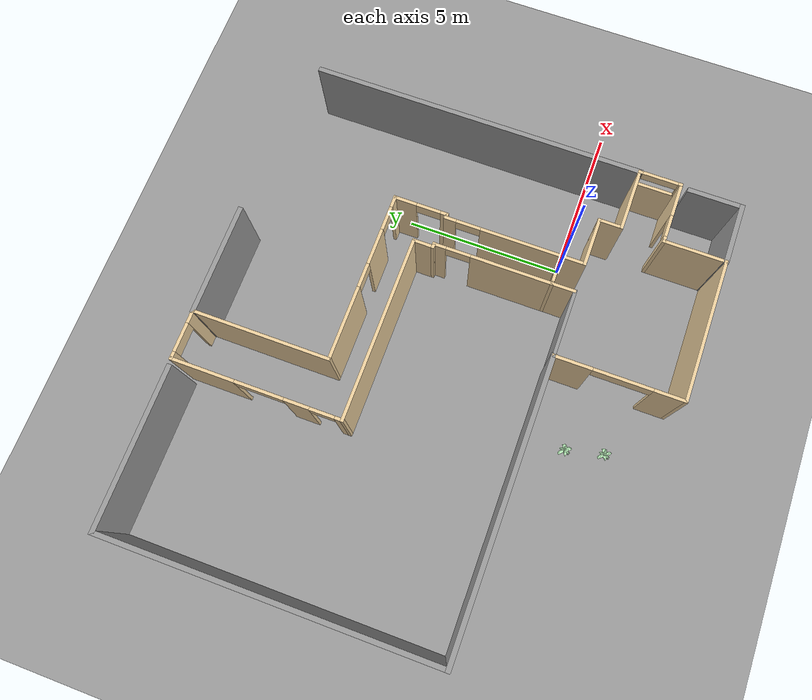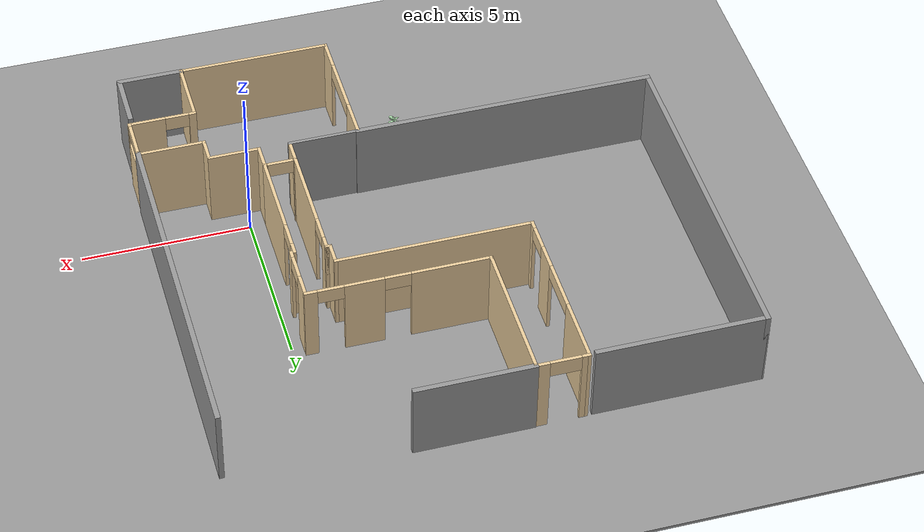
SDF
<sdf version="1.6">
 <world name="default">
  <model name="ground_plane">
   <static>1</static>
   <link name="link">
    <collision name="collision">
     <geometry><plane><normal>0 0 1</normal><size>100 100</size></plane></geometry>
     <surface><friction><ode><mu>100</mu><mu2>50</mu2></ode></friction></surface>
    </collision>
    <visual name="visual">
     <cast_shadows>0</cast_shadows>
     <geometry><plane><normal>0 0 1</normal><size>100 100</size></plane></geometry>
     <material>
      <script><uri>file://media/materials/scripts/gazebo.material</uri><name>Gazebo/Grey</name></script>
     </material>
    </visual>
   </link>
  </model>
  <model name="myroom">
   <pose>-4.68363 2.51363 0 0 -0 0</pose>
   <link name="Wall_19">
    <collision name="Wall_19_Collision">
     <geometry><box><size>0.81 0.1 2.5</size></box></geometry>
     <pose>0 0 1.25 0 -0 0</pose>
    </collision>
    <visual name="Wall_19_Visual">
     <pose>0 0 1.25 0 -0 0</pose>
     <geometry><box><size>0.81 0.1 2.5</size></box></geometry>
     <material>
      <script><uri>file://media/materials/scripts/gazebo.material</uri><name>Gazebo/Grey</name></script>
      <ambient>0.921569 0.807843 0.615686 1</ambient>
     </material>
     <meta><layer>0</layer></meta>
    </visual>
    <pose>4.2 -2.785 0 0 0 -1.5708</pose>
   </link>
   <link name="Wall_22">
    <collision name="Wall_22_Collision">
     <geometry><box><size>1.57 0.1 2.5</size></box></geometry>
     <pose>0 0 1.25 0 -0 0</pose>
    </collision>
    <visual name="Wall_22_Visual">
     <pose>0 0 1.25 0 -0 0</pose>
     <geometry><box><size>1.57 0.1 2.5</size></box></geometry>
     <material>
      <script><uri>file://media/materials/scripts/gazebo.material</uri><name>Gazebo/Grey</name></script>
      <ambient>0.921569 0.807843 0.615686 1</ambient>
     </material>
     <meta><layer>0</layer></meta>
    </visual>
    <pose>4.935 -3.14 0 0 -0 0</pose>
   </link>
   <link name="Wall_24">
    <collision name="Wall_24_Collision">
     <geometry><box><size>0.79 0.1 2.5</size></box></geometry>
     <pose>0 0 1.25 0 -0 0</pose>
    </collision>
    <visual name="Wall_24_Visual">
     <pose>0 0 1.25 0 -0 0</pose>
     <geometry><box><size>0.79 0.1 2.5</size></box></geometry>
     <material>
      <script><uri>file://media/materials/scripts/gazebo.material</uri><name>Gazebo/Grey</name></script>
      <ambient>0.921569 0.807843 0.615686 1</ambient>
     </material>
     <meta><layer>0</layer></meta>
    </visual>
    <pose>5.67 -3.485 0 0 0 -1.5708</pose>
   </link>
   <link name="Wall_26">
    <collision name="Wall_26_Collision">
     <geometry><box><size>2.03 0.1 2.5</size></box></geometry>
     <pose>0 0 1.25 0 -0 0</pose>
    </collision>
    <visual name="Wall_26_Visual">
     <pose>0 0 1.25 0 -0 0</pose>
     <geometry><box><size>2.03 0.1 2.5</size></box></geometry>
     <material>
      <script><uri>file://media/materials/scripts/gazebo.material</uri><name>Gazebo/Grey</name></script>
      <ambient>0.921569 0.807843 0.615686 1</ambient>
     </material>
     <meta><layer>0</layer></meta>
    </visual>
    <pose>6.635 -3.83 0 0 -0 0</pose>
   </link>
   <link name="Wall_28">
    <pose>7.6 -4.475 0 0 0 -1.5708</pose>
    <visual name="Wall_28_Visual_0">
     <pose>-0.621782 0 1.25 0 -0 0</pose>
     <geometry><box><size>0.146436 0.1 2.5</size></box></geometry>
     <material>
      <script><uri>file://media/materials/scripts/gazebo.material</uri><name>Gazebo/Grey</name></script>
      <ambient>0.921569 0.807843 0.615686 1</ambient>
     </material>
     <meta><layer>0</layer></meta>
    </visual>
    <collision name="Wall_28_Collision_0">
     <geometry><box><size>0.146436 0.1 2.5</size></box></geometry>
     <pose>-0.621782 0 1.25 0 -0 0</pose>
    </collision>
    <visual name="Wall_28_Visual_1">
     <pose>0.073218 0 0.9 0 -0 0</pose>
     <geometry><box><size>1.24356 0.1 1.8</size></box></geometry>
     <material>
      <script><uri>file://media/materials/scripts/gazebo.material</uri><name>Gazebo/Grey</name></script>
      <ambient>0.921569 0.807843 0.615686 1</ambient>
     </material>
     <meta><layer>0</layer></meta>
    </visual>
    <collision name="Wall_28_Collision_1">
     <geometry><box><size>1.24356 0.1 1.8</size></box></geometry>
     <pose>0.073218 0 0.9 0 -0 0</pose>
    </collision>
    <visual name="Wall_28_Visual_2">
     <pose>0.623218 0 2.15 0 -0 0</pose>
     <geometry><box><size>0.143564 0.1 0.7</size></box></geometry>
     <material>
      <script><uri>file://media/materials/scripts/gazebo.material</uri><name>Gazebo/Grey</name></script>
      <ambient>0.921569 0.807843 0.615686 1</ambient>
     </material>
     <meta><layer>0</layer></meta>
    </visual>
    <collision name="Wall_28_Collision_2">
     <geometry><box><size>0.143564 0.1 0.7</size></box></geometry>
     <pose>0.623218 0 2.15 0 -0 0</pose>
    </collision>
    <visual name="Wall_28_Visual_3">
     <pose>0.001436 0 2.35 0 -0 0</pose>
     <geometry><box><size>1.1 0.1 0.3</size></box></geometry>
     <material>
      <script><uri>file://media/materials/scripts/gazebo.material</uri><name>Gazebo/Grey</name></script>
      <ambient>0.921569 0.807843 0.615686 1</ambient>
     </material>
     <meta><layer>0</layer></meta>
    </visual>
    <collision name="Wall_28_Collision_3">
     <geometry><box><size>1.1 0.1 0.3</size></box></geometry>
     <pose>0.001436 0 2.35 0 -0 0</pose>
    </collision>
   </link>
   <link name="Wall_30">
    <pose>6.635 -5.12 0 0 -0 3.14159</pose>
    <visual name="Wall_30_Visual_0">
     <pose>-0.459913 0 1.25 0 -0 0</pose>
     <geometry><box><size>1.11017 0.1 2.5</size></box></geometry>
     <material>
      <script><uri>file://media/materials/scripts/gazebo.material</uri><name>Gazebo/Grey</name></script>
      <ambient>0.921569 0.807843 0.615686 1</ambient>
     </material>
     <meta><layer>0</layer></meta>
    </visual>
    <collision name="Wall_30_Collision_0">
     <geometry><box><size>1.11017 0.1 2.5</size></box></geometry>
     <pose>-0.459913 0 1.25 0 -0 0</pose>
    </collision>
    <visual name="Wall_30_Visual_1">
     <pose>0.905087 0 1.25 0 -0 0</pose>
     <geometry><box><size>0.219825 0.1 2.5</size></box></geometry>
     <material>
      <script><uri>file://media/materials/scripts/gazebo.material</uri><name>Gazebo/Grey</name></script>
      <ambient>0.921569 0.807843 0.615686 1</ambient>
     </material>
     <meta><layer>0</layer></meta>
    </visual>
    <collision name="Wall_30_Collision_1">
     <geometry><box><size>0.219825 0.1 2.5</size></box></geometry>
     <pose>0.905087 0 1.25 0 -0 0</pose>
    </collision>
    <visual name="Wall_30_Visual_2">
     <pose>0.445175 0 2.275 0 -0 0</pose>
     <geometry><box><size>0.7 0.1 0.45</size></box></geometry>
     <material>
      <script><uri>file://media/materials/scripts/gazebo.material</uri><name>Gazebo/Grey</name></script>
      <ambient>0.921569 0.807843 0.615686 1</ambient>
     </material>
     <meta><layer>0</layer></meta>
    </visual>
    <collision name="Wall_30_Collision_2">
     <geometry><box><size>0.7 0.1 0.45</size></box></geometry>
     <pose>0.445175 0 2.275 0 -0 0</pose>
    </collision>
   </link>
   <link name="Wall_32">
    <collision name="Wall_32_Collision">
     <geometry><box><size>1.99 0.1 2.5</size></box></geometry>
     <pose>0 0 1.25 0 -0 0</pose>
    </collision>
    <visual name="Wall_32_Visual">
     <pose>0 0 1.25 0 -0 0</pose>
     <geometry><box><size>1.99 0.1 2.5</size></box></geometry>
     <material>
      <script><uri>file://media/materials/scripts/gazebo.material</uri><name>Gazebo/Grey</name></script>
      <ambient>0.921569 0.807843 0.615686 1</ambient>
     </material>
     <meta><layer>0</layer></meta>
    </visual>
    <pose>5.67 -6.065 0 0 0 -1.5708</pose>
   </link>
   <link name="Wall_34">
    <collision name="Wall_34_Collision">
     <geometry><box><size>4.52 0.1 2.5</size></box></geometry>
     <pose>0 0 1.25 0 -0 0</pose>
    </collision>
    <visual name="Wall_34_Visual">
     <pose>0 0 1.25 0 -0 0</pose>
     <geometry><box><size>4.52 0.1 2.5</size></box></geometry>
     <material>
      <script><uri>file://media/materials/scripts/gazebo.material</uri><name>Gazebo/Grey</name></script>
      <ambient>0.921569 0.807843 0.615686 1</ambient>
     </material>
     <meta><layer>0</layer></meta>
    </visual>
    <pose>3.46 -7.01 0 0 -0 3.14159</pose>
   </link>
   <link name="Wall_36">
    <pose>1.25 -5.0735 0 0 -0 1.5708</pose>
    <visual name="Wall_36_Visual_0">
     <pose>-1.4907 0 1.25 0 -0 0</pose>
     <geometry><box><size>0.991176 0.1 2.5</size></box></geometry>
     <material>
      <script><uri>file://media/materials/scripts/gazebo.material</uri><name>Gazebo/Grey</name></script>
      <ambient>0.921569 0.807843 0.615686 1</ambient>
     </material>
     <meta><layer>0</layer></meta>
    </visual>
    <collision name="Wall_36_Collision_0">
     <geometry><box><size>0.991176 0.1 2.5</size></box></geometry>
     <pose>-1.4907 0 1.25 0 -0 0</pose>
    </collision>
    <visual name="Wall_36_Visual_1">
     <pose>0.495588 0 0.005 0 -0 0</pose>
     <geometry><box><size>2.9814 0.1 0.01</size></box></geometry>
     <material>
      <script><uri>file://media/materials/scripts/gazebo.material</uri><name>Gazebo/Grey</name></script>
      <ambient>0.921569 0.807843 0.615686 1</ambient>
     </material>
     <meta><layer>0</layer></meta>
    </visual>
    <collision name="Wall_36_Collision_1">
     <geometry><box><size>2.9814 0.1 0.01</size></box></geometry>
     <pose>0.495588 0 0.005 0 -0 0</pose>
    </collision>
    <visual name="Wall_36_Visual_2">
     <pose>1.38559 0 1.255 0 -0 0</pose>
     <geometry><box><size>1.2014 0.1 2.49</size></box></geometry>
     <material>
      <script><uri>file://media/materials/scripts/gazebo.material</uri><name>Gazebo/Grey</name></script>
      <ambient>0.921569 0.807843 0.615686 1</ambient>
     </material>
     <meta><layer>0</layer></meta>
    </visual>
    <collision name="Wall_36_Collision_2">
     <geometry><box><size>1.2014 0.1 2.49</size></box></geometry>
     <pose>1.38559 0 1.255 0 -0 0</pose>
    </collision>
    <visual name="Wall_36_Visual_3">
     <pose>-0.105111 0 2.255 0 -0 0</pose>
     <geometry><box><size>1.78 0.1 0.49</size></box></geometry>
     <material>
      <script><uri>file://media/materials/scripts/gazebo.material</uri><name>Gazebo/Grey</name></script>
      <ambient>0.921569 0.807843 0.615686 1</ambient>
     </material>
     <meta><layer>0</layer></meta>
    </visual>
    <collision name="Wall_36_Collision_3">
     <geometry><box><size>1.78 0.1 0.49</size></box></geometry>
     <pose>-0.105111 0 2.255 0 -0 0</pose>
    </collision>
   </link>
   <link name="Wall_38">
    <pose>3.745 -2.43 0 0 -0 3.14159</pose>
    <visual name="Wall_38_Visual_0">
     <pose>-0.442506 0 1.25 0 -0 0</pose>
     <geometry><box><size>0.124989 0.1 2.5</size></box></geometry>
     <material>
      <script><uri>file://media/materials/scripts/gazebo.material</uri><name>Gazebo/Grey</name></script>
      <ambient>0.921569 0.807843 0.615686 1</ambient>
     </material>
     <meta><layer>0</layer></meta>
    </visual>
    <collision name="Wall_38_Collision_0">
     <geometry><box><size>0.124989 0.1 2.5</size></box></geometry>
     <pose>-0.442506 0 1.25 0 -0 0</pose>
    </collision>
    <visual name="Wall_38_Visual_1">
     <pose>0.442494 0 1.25 0 -0 0</pose>
     <geometry><box><size>0.125011 0.1 2.5</size></box></geometry>
     <material>
      <script><uri>file://media/materials/scripts/gazebo.material</uri><name>Gazebo/Grey</name></script>
      <ambient>0.921569 0.807843 0.615686 1</ambient>
     </material>
     <meta><layer>0</layer></meta>
    </visual>
    <collision name="Wall_38_Collision_1">
     <geometry><box><size>0.125011 0.1 2.5</size></box></geometry>
     <pose>0.442494 0 1.25 0 -0 0</pose>
    </collision>
    <visual name="Wall_38_Visual_2">
     <pose>-1.1e-05 0 2.275 0 -0 0</pose>
     <geometry><box><size>0.76 0.1 0.45</size></box></geometry>
     <material>
      <script><uri>file://media/materials/scripts/gazebo.material</uri><name>Gazebo/Grey</name></script>
      <ambient>0.921569 0.807843 0.615686 1</ambient>
     </material>
     <meta><layer>0</layer></meta>
    </visual>
    <collision name="Wall_38_Collision_2">
     <geometry><box><size>0.76 0.1 0.45</size></box></geometry>
     <pose>-1.1e-05 0 2.275 0 -0 0</pose>
    </collision>
   </link>
   <link name="Wall_43">
    <collision name="Wall_43_Collision">
     <geometry><box><size>0.8 0.1 2.5</size></box></geometry>
     <pose>0 0 1.25 0 -0 0</pose>
    </collision>
    <visual name="Wall_43_Visual">
     <pose>0 0 1.25 0 -0 0</pose>
     <geometry><box><size>0.8 0.1 2.5</size></box></geometry>
     <material>
      <script><uri>file://media/materials/scripts/gazebo.material</uri><name>Gazebo/Grey</name></script>
      <ambient>0.921569 0.807843 0.615686 1</ambient>
     </material>
     <meta><layer>0</layer></meta>
    </visual>
    <pose>3.29 -2.78 0 0 0 -1.5708</pose>
   </link>
   <link name="Wall_48">
    <collision name="Wall_48_Collision">
     <geometry><box><size>2.14 0.1 2.5</size></box></geometry>
     <pose>0 0 1.25 0 -0 0</pose>
    </collision>
    <visual name="Wall_48_Visual">
     <pose>0 0 1.25 0 -0 0</pose>
     <geometry><box><size>2.14 0.1 2.5</size></box></geometry>
     <material>
      <script><uri>file://media/materials/scripts/gazebo.material</uri><name>Gazebo/Grey</name></script>
      <ambient>1 1 1 1</ambient>
     </material>
     <meta><layer>0</layer></meta>
    </visual>
    <pose>2.27 -3.13 0 0 -0 3.14159</pose>
   </link>
   <link name="Wall_50">
    <pose>3.29 -0.61 0 0 -0 1.5708</pose>
    <visual name="Wall_50_Visual_0">
     <pose>-0.593478 0 1.25 0 -0 0</pose>
     <geometry><box><size>2.55304 0.1 2.5</size></box></geometry>
     <material>
      <script><uri>file://media/materials/scripts/gazebo.material</uri><name>Gazebo/Grey</name></script>
      <ambient>0.921569 0.807843 0.615686 1</ambient>
     </material>
     <meta><layer>0</layer></meta>
    </visual>
    <collision name="Wall_50_Collision_0">
     <geometry><box><size>2.55304 0.1 2.5</size></box></geometry>
     <pose>-0.593478 0 1.25 0 -0 0</pose>
    </collision>
    <visual name="Wall_50_Visual_1">
     <pose>1.65652 0 1.25 0 -0 0</pose>
     <geometry><box><size>0.426956 0.1 2.5</size></box></geometry>
     <material>
      <script><uri>file://media/materials/scripts/gazebo.material</uri><name>Gazebo/Grey</name></script>
      <ambient>0.921569 0.807843 0.615686 1</ambient>
     </material>
     <meta><layer>0</layer></meta>
    </visual>
    <collision name="Wall_50_Collision_1">
     <geometry><box><size>0.426956 0.1 2.5</size></box></geometry>
     <pose>1.65652 0 1.25 0 -0 0</pose>
    </collision>
    <visual name="Wall_50_Visual_2">
     <pose>1.06304 0 2.275 0 -0 0</pose>
     <geometry><box><size>0.76 0.1 0.45</size></box></geometry>
     <material>
      <script><uri>file://media/materials/scripts/gazebo.material</uri><name>Gazebo/Grey</name></script>
      <ambient>0.921569 0.807843 0.615686 1</ambient>
     </material>
     <meta><layer>0</layer></meta>
    </visual>
    <collision name="Wall_50_Collision_2">
     <geometry><box><size>0.76 0.1 0.45</size></box></geometry>
     <pose>1.06304 0 2.275 0 -0 0</pose>
    </collision>
   </link>
   <link name="Wall_52">
    <collision name="Wall_52_Collision">
     <geometry><box><size>0.2 0.1 2.5</size></box></geometry>
     <pose>0 0 1.25 0 -0 0</pose>
    </collision>
    <visual name="Wall_52_Visual">
     <pose>0 0 1.25 0 -0 0</pose>
     <geometry><box><size>0.2 0.1 2.5</size></box></geometry>
     <material>
      <script><uri>file://media/materials/scripts/gazebo.material</uri><name>Gazebo/Grey</name></script>
      <ambient>0.921569 0.807843 0.615686 1</ambient>
     </material>
     <meta><layer>0</layer></meta>
    </visual>
    <pose>3.24 1.21 0 0 -0 3.14159</pose>
   </link>
   <link name="Wall_53">
    <collision name="Wall_53_Collision">
     <geometry><box><size>0.7 0.1 2.5</size></box></geometry>
     <pose>0 0 1.25 0 -0 0</pose>
    </collision>
    <visual name="Wall_53_Visual">
     <pose>0 0 1.25 0 -0 0</pose>
     <geometry><box><size>0.7 0.1 2.5</size></box></geometry>
     <material>
      <script><uri>file://media/materials/scripts/gazebo.material</uri><name>Gazebo/Grey</name></script>
      <ambient>0.921569 0.807843 0.615686 1</ambient>
     </material>
     <meta><layer>0</layer></meta>
    </visual>
    <pose>3.19 1.51 0 0 -0 1.5708</pose>
   </link>
   <link name="Wall_54">
    <collision name="Wall_54_Collision">
     <geometry><box><size>5.8 0.1 2.5</size></box></geometry>
     <pose>0 0 1.25 0 -0 0</pose>
    </collision>
    <visual name="Wall_54_Visual">
     <pose>0 0 1.25 0 -0 0</pose>
     <geometry><box><size>5.8 0.1 2.5</size></box></geometry>
     <material>
      <script><uri>file://media/materials/scripts/gazebo.material</uri><name>Gazebo/Grey</name></script>
      <ambient>0.921569 0.807843 0.615686 1</ambient>
     </material>
     <meta><layer>0</layer></meta>
    </visual>
    <pose>0.34 1.81 0 0 -0 3.14159</pose>
   </link>
   <link name="Wall_56">
    <pose>4.2 -0.63 0 0 -0 1.5708</pose>
    <visual name="Wall_56_Visual_0">
     <pose>-0.569733 0 1.25 0 -0 0</pose>
     <geometry><box><size>2.56053 0.1 2.5</size></box></geometry>
     <material>
      <script><uri>file://media/materials/scripts/gazebo.material</uri><name>Gazebo/Grey</name></script>
      <ambient>0.921569 0.807843 0.615686 1</ambient>
     </material>
     <meta><layer>0</layer></meta>
    </visual>
    <collision name="Wall_56_Collision_0">
     <geometry><box><size>2.56053 0.1 2.5</size></box></geometry>
     <pose>-0.569733 0 1.25 0 -0 0</pose>
    </collision>
    <visual name="Wall_56_Visual_1">
     <pose>1.66027 0 1.25 0 -0 0</pose>
     <geometry><box><size>0.379466 0.1 2.5</size></box></geometry>
     <material>
      <script><uri>file://media/materials/scripts/gazebo.material</uri><name>Gazebo/Grey</name></script>
      <ambient>0.921569 0.807843 0.615686 1</ambient>
     </material>
     <meta><layer>0</layer></meta>
    </visual>
    <collision name="Wall_56_Collision_1">
     <geometry><box><size>0.379466 0.1 2.5</size></box></geometry>
     <pose>1.66027 0 1.25 0 -0 0</pose>
    </collision>
    <visual name="Wall_56_Visual_2">
     <pose>1.09053 0 2.275 0 -0 0</pose>
     <geometry><box><size>0.76 0.1 0.45</size></box></geometry>
     <material>
      <script><uri>file://media/materials/scripts/gazebo.material</uri><name>Gazebo/Grey</name></script>
      <ambient>0.921569 0.807843 0.615686 1</ambient>
     </material>
     <meta><layer>0</layer></meta>
    </visual>
    <collision name="Wall_56_Collision_2">
     <geometry><box><size>0.76 0.1 0.45</size></box></geometry>
     <pose>1.09053 0 2.275 0 -0 0</pose>
    </collision>
   </link>
   <link name="Wall_57">
    <collision name="Wall_57_Collision">
     <geometry><box><size>0.2 0.1 2.5</size></box></geometry>
     <pose>0 0 1.25 0 -0 0</pose>
    </collision>
    <visual name="Wall_57_Visual">
     <pose>0 0 1.25 0 -0 0</pose>
     <geometry><box><size>0.2 0.1 2.5</size></box></geometry>
     <material>
      <script><uri>file://media/materials/scripts/gazebo.material</uri><name>Gazebo/Grey</name></script>
      <ambient>0.921569 0.807843 0.615686 1</ambient>
     </material>
     <meta><layer>0</layer></meta>
    </visual>
    <pose>4.25 1.17 0 0 -0 0</pose>
   </link>
   <link name="Wall_58">
    <pose>4.3 1.97 0 0 -0 1.5708</pose>
    <visual name="Wall_58_Visual_0">
     <pose>-0.725824 0 1.25 0 -0 0</pose>
     <geometry><box><size>0.248351 0.1 2.5</size></box></geometry>
     <material>
      <script><uri>file://media/materials/scripts/gazebo.material</uri><name>Gazebo/Grey</name></script>
      <ambient>0.921569 0.807843 0.615686 1</ambient>
     </material>
     <meta><layer>0</layer></meta>
    </visual>
    <collision name="Wall_58_Collision_0">
     <geometry><box><size>0.248351 0.1 2.5</size></box></geometry>
     <pose>-0.725824 0 1.25 0 -0 0</pose>
    </collision>
    <visual name="Wall_58_Visual_1">
     <pose>0.504176 0 1.25 0 -0 0</pose>
     <geometry><box><size>0.691649 0.1 2.5</size></box></geometry>
     <material>
      <script><uri>file://media/materials/scripts/gazebo.material</uri><name>Gazebo/Grey</name></script>
      <ambient>0.921569 0.807843 0.615686 1</ambient>
     </material>
     <meta><layer>0</layer></meta>
    </visual>
    <collision name="Wall_58_Collision_1">
     <geometry><box><size>0.691649 0.1 2.5</size></box></geometry>
     <pose>0.504176 0 1.25 0 -0 0</pose>
    </collision>
    <visual name="Wall_58_Visual_2">
     <pose>-0.221649 0 2.275 0 -0 0</pose>
     <geometry><box><size>0.76 0.1 0.45</size></box></geometry>
     <material>
      <script><uri>file://media/materials/scripts/gazebo.material</uri><name>Gazebo/Grey</name></script>
      <ambient>0.921569 0.807843 0.615686 1</ambient>
     </material>
     <meta><layer>0</layer></meta>
    </visual>
    <collision name="Wall_58_Collision_2">
     <geometry><box><size>0.76 0.1 0.45</size></box></geometry>
     <pose>-0.221649 0 2.275 0 -0 0</pose>
    </collision>
   </link>
   <link name="Wall_62">
    <pose>-2.51 4.41 0 0 -0 1.5708</pose>
    <visual name="Wall_62_Visual_0">
     <pose>-2.51076 0 1.25 0 -0 0</pose>
     <geometry><box><size>0.278473 0.1 2.5</size></box></geometry>
     <material>
      <script><uri>file://media/materials/scripts/gazebo.material</uri><name>Gazebo/Grey</name></script>
      <ambient>0.921569 0.807843 0.615686 1</ambient>
     </material>
     <meta><layer>0</layer></meta>
    </visual>
    <collision name="Wall_62_Collision_0">
     <geometry><box><size>0.278473 0.1 2.5</size></box></geometry>
     <pose>-2.51076 0 1.25 0 -0 0</pose>
    </collision>
    <visual name="Wall_62_Visual_1">
     <pose>-1.2242 0 1.25 0 -0 0</pose>
     <geometry><box><size>0.774661 0.1 2.5</size></box></geometry>
     <material>
      <script><uri>file://media/materials/scripts/gazebo.material</uri><name>Gazebo/Grey</name></script>
      <ambient>0.921569 0.807843 0.615686 1</ambient>
     </material>
     <meta><layer>0</layer></meta>
    </visual>
    <collision name="Wall_62_Collision_1">
     <geometry><box><size>0.774661 0.1 2.5</size></box></geometry>
     <pose>-1.2242 0 1.25 0 -0 0</pose>
    </collision>
    <visual name="Wall_62_Visual_2">
     <pose>1.65657 0 1.25 0 -0 0</pose>
     <geometry><box><size>1.98687 0.1 2.5</size></box></geometry>
     <material>
      <script><uri>file://media/materials/scripts/gazebo.material</uri><name>Gazebo/Grey</name></script>
      <ambient>0.921569 0.807843 0.615686 1</ambient>
     </material>
     <meta><layer>0</layer></meta>
    </visual>
    <collision name="Wall_62_Collision_2">
     <geometry><box><size>1.98687 0.1 2.5</size></box></geometry>
     <pose>1.65657 0 1.25 0 -0 0</pose>
    </collision>
    <visual name="Wall_62_Visual_3">
     <pose>-1.99153 0 2.275 0 -0 0</pose>
     <geometry><box><size>0.76 0.1 0.45</size></box></geometry>
     <material>
      <script><uri>file://media/materials/scripts/gazebo.material</uri><name>Gazebo/Grey</name></script>
      <ambient>0.921569 0.807843 0.615686 1</ambient>
     </material>
     <meta><layer>0</layer></meta>
    </visual>
    <collision name="Wall_62_Collision_3">
     <geometry><box><size>0.76 0.1 0.45</size></box></geometry>
     <pose>-1.99153 0 2.275 0 -0 0</pose>
    </collision>
    <visual name="Wall_62_Visual_4">
     <pose>-0.086866 0 2.275 0 -0 0</pose>
     <geometry><box><size>1.5 0.1 0.45</size></box></geometry>
     <material>
      <script><uri>file://media/materials/scripts/gazebo.material</uri><name>Gazebo/Grey</name></script>
      <ambient>0.921569 0.807843 0.615686 1</ambient>
     </material>
     <meta><layer>0</layer></meta>
    </visual>
    <collision name="Wall_62_Collision_4">
     <geometry><box><size>1.5 0.1 0.45</size></box></geometry>
     <pose>-0.086866 0 2.275 0 -0 0</pose>
    </collision>
   </link>
   <link name="Wall_64">
    <pose>-1.76 7.01 0 0 -0 0</pose>
    <visual name="Wall_64_Visual_0">
     <pose>-0.668872 0 1.25 0 -0 0</pose>
     <geometry><box><size>0.262256 0.1 2.5</size></box></geometry>
     <material>
      <script><uri>file://media/materials/scripts/gazebo.material</uri><name>Gazebo/Grey</name></script>
      <ambient>0.921569 0.807843 0.615686 1</ambient>
     </material>
     <meta><layer>0</layer></meta>
    </visual>
    <collision name="Wall_64_Collision_0">
     <geometry><box><size>0.262256 0.1 2.5</size></box></geometry>
     <pose>-0.668872 0 1.25 0 -0 0</pose>
    </collision>
    <visual name="Wall_64_Visual_1">
     <pose>0.581128 0 1.25 0 -0 0</pose>
     <geometry><box><size>0.437744 0.1 2.5</size></box></geometry>
     <material>
      <script><uri>file://media/materials/scripts/gazebo.material</uri><name>Gazebo/Grey</name></script>
      <ambient>0.921569 0.807843 0.615686 1</ambient>
     </material>
     <meta><layer>0</layer></meta>
    </visual>
    <collision name="Wall_64_Collision_1">
     <geometry><box><size>0.437744 0.1 2.5</size></box></geometry>
     <pose>0.581128 0 1.25 0 -0 0</pose>
    </collision>
    <visual name="Wall_64_Visual_2">
     <pose>-0.087744 0 2.25 0 -0 0</pose>
     <geometry><box><size>0.9 0.1 0.5</size></box></geometry>
     <material>
      <script><uri>file://media/materials/scripts/gazebo.material</uri><name>Gazebo/Grey</name></script>
      <ambient>0.921569 0.807843 0.615686 1</ambient>
     </material>
     <meta><layer>0</layer></meta>
    </visual>
    <collision name="Wall_64_Collision_2">
     <geometry><box><size>0.9 0.1 0.5</size></box></geometry>
     <pose>-0.087744 0 2.25 0 -0 0</pose>
    </collision>
   </link>
   <link name="Wall_66">
    <collision name="Wall_66_Collision">
     <geometry><box><size>4.30002 0.1 2.5</size></box></geometry>
     <pose>0 0 1.25 0 -0 0</pose>
    </collision>
    <visual name="Wall_66_Visual">
     <pose>0 0 1.25 0 -0 0</pose>
     <geometry><box><size>4.30002 0.1 2.5</size></box></geometry>
     <material>
      <script><uri>file://media/materials/scripts/gazebo.material</uri><name>Gazebo/Grey</name></script>
      <ambient>0.921569 0.807843 0.615686 1</ambient>
     </material>
     <meta><layer>0</layer></meta>
    </visual>
    <pose>-1.01 4.91 0 0 0 -1.5708</pose>
   </link>
   <link name="Wall_68">
    <pose>1.645 2.81 0 0 -0 0</pose>
    <visual name="Wall_68_Visual_0">
     <pose>-1.53066 0 1.25 0 -0 0</pose>
     <geometry><box><size>2.34868 0.1 2.5</size></box></geometry>
     <material>
      <script><uri>file://media/materials/scripts/gazebo.material</uri><name>Gazebo/Grey</name></script>
      <ambient>0.921569 0.807843 0.615686 1</ambient>
     </material>
     <meta><layer>0</layer></meta>
    </visual>
    <collision name="Wall_68_Collision_0">
     <geometry><box><size>2.34868 0.1 2.5</size></box></geometry>
     <pose>-1.53066 0 1.25 0 -0 0</pose>
    </collision>
    <visual name="Wall_68_Visual_1">
     <pose>0.980366 0 1.25 0 -0 0</pose>
     <geometry><box><size>1.15337 0.1 2.5</size></box></geometry>
     <material>
      <script><uri>file://media/materials/scripts/gazebo.material</uri><name>Gazebo/Grey</name></script>
      <ambient>0.921569 0.807843 0.615686 1</ambient>
     </material>
     <meta><layer>0</layer></meta>
    </visual>
    <collision name="Wall_68_Collision_1">
     <geometry><box><size>1.15337 0.1 2.5</size></box></geometry>
     <pose>0.980366 0 1.25 0 -0 0</pose>
    </collision>
    <visual name="Wall_68_Visual_2">
     <pose>2.51103 0 1.25 0 -0 0</pose>
     <geometry><box><size>0.387948 0.1 2.5</size></box></geometry>
     <material>
      <script><uri>file://media/materials/scripts/gazebo.material</uri><name>Gazebo/Grey</name></script>
      <ambient>0.921569 0.807843 0.615686 1</ambient>
     </material>
     <meta><layer>0</layer></meta>
    </visual>
    <collision name="Wall_68_Collision_2">
     <geometry><box><size>0.387948 0.1 2.5</size></box></geometry>
     <pose>2.51103 0 1.25 0 -0 0</pose>
    </collision>
    <visual name="Wall_68_Visual_3">
     <pose>0.02368 0 2.275 0 -0 0</pose>
     <geometry><box><size>0.76 0.1 0.45</size></box></geometry>
     <material>
      <script><uri>file://media/materials/scripts/gazebo.material</uri><name>Gazebo/Grey</name></script>
      <ambient>0.921569 0.807843 0.615686 1</ambient>
     </material>
     <meta><layer>0</layer></meta>
    </visual>
    <collision name="Wall_68_Collision_3">
     <geometry><box><size>0.76 0.1 0.45</size></box></geometry>
     <pose>0.02368 0 2.275 0 -0 0</pose>
    </collision>
    <visual name="Wall_68_Visual_4">
     <pose>1.93705 0 2.275 0 -0 0</pose>
     <geometry><box><size>0.76 0.1 0.45</size></box></geometry>
     <material>
      <script><uri>file://media/materials/scripts/gazebo.material</uri><name>Gazebo/Grey</name></script>
      <ambient>0.921569 0.807843 0.615686 1</ambient>
     </material>
     <meta><layer>0</layer></meta>
    </visual>
    <collision name="Wall_68_Collision_4">
     <geometry><box><size>0.76 0.1 0.45</size></box></geometry>
     <pose>1.93705 0 2.275 0 -0 0</pose>
    </collision>
   </link>
   <link name="Wall_70">
    <collision name="Wall_70_Collision">
     <geometry><box><size>9 0.15 2.5</size></box></geometry>
     <pose>0 0 1.25 0 -0 0</pose>
    </collision>
    <visual name="Wall_70_Visual">
     <pose>0 0 1.25 0 -0 0</pose>
     <geometry><box><size>9 0.15 2.5</size></box></geometry>
     <material>
      <script><uri>file://media/materials/scripts/gazebo.material</uri><name>Gazebo/Grey</name></script>
      <ambient>1 1 1 1</ambient>
     </material>
     <meta><layer>0</layer></meta>
    </visual>
    <pose>-3.175 -3.13 0 0 -0 3.14159</pose>
   </link>
   <link name="Wall_71">
    <collision name="Wall_71_Collision">
     <geometry><box><size>10.25 0.15 2.5</size></box></geometry>
     <pose>0 0 1.25 0 -0 0</pose>
    </collision>
    <visual name="Wall_71_Visual">
     <pose>0 0 1.25 0 -0 0</pose>
     <geometry><box><size>10.25 0.15 2.5</size></box></geometry>
     <material>
      <script><uri>file://media/materials/scripts/gazebo.material</uri><name>Gazebo/Grey</name></script>
      <ambient>1 1 1 1</ambient>
     </material>
     <meta><layer>0</layer></meta>
    </visual>
    <pose>-7.6 1.92 0 0 -0 1.5708</pose>
   </link>
   <link name="Wall_72">
    <collision name="Wall_72_Collision">
     <geometry><box><size>5 0.15 2.5</size></box></geometry>
     <pose>0 0 1.25 0 -0 0</pose>
    </collision>
    <visual name="Wall_72_Visual">
     <pose>0 0 1.25 0 -0 0</pose>
     <geometry><box><size>5 0.15 2.5</size></box></geometry>
     <material>
      <script><uri>file://media/materials/scripts/gazebo.material</uri><name>Gazebo/Grey</name></script>
      <ambient>1 1 1 1</ambient>
     </material>
     <meta><layer>0</layer></meta>
    </visual>
    <pose>-5.175 6.97 0 0 -0 0</pose>
   </link>
   <link name="Wall_78">
    <collision name="Wall_78_Collision">
     <geometry><box><size>2 0.15 2.5</size></box></geometry>
     <pose>0 0 1.25 0 -0 0</pose>
    </collision>
    <visual name="Wall_78_Visual">
     <pose>0 0 1.25 0 -0 0</pose>
     <geometry><box><size>2 0.15 2.5</size></box></geometry>
     <material>
      <script><uri>file://media/materials/scripts/gazebo.material</uri><name>Gazebo/Grey</name></script>
      <ambient>1 1 1 1</ambient>
     </material>
     <meta><layer>0</layer></meta>
    </visual>
    <pose>6.595 -7.01 0 0 -0 0</pose>
   </link>
   <link name="Wall_79">
    <collision name="Wall_79_Collision">
     <geometry><box><size>1.75 0.15 2.5</size></box></geometry>
     <pose>0 0 1.25 0 -0 0</pose>
    </collision>
    <visual name="Wall_79_Visual">
     <pose>0 0 1.25 0 -0 0</pose>
     <geometry><box><size>1.75 0.15 2.5</size></box></geometry>
     <material>
      <script><uri>file://media/materials/scripts/gazebo.material</uri><name>Gazebo/Grey</name></script>
      <ambient>1 1 1 1</ambient>
     </material>
     <meta><layer>0</layer></meta>
    </visual>
    <pose>7.52 -6.21 0 0 -0 1.5708</pose>
   </link>
   <link name="Wall_81">
    <collision name="Wall_81_Collision">
     <geometry><box><size>10.5 0.15 2.5</size></box></geometry>
     <pose>0 0 1.25 0 -0 0</pose>
    </collision>
    <visual name="Wall_81_Visual">
     <pose>0 0 1.25 0 -0 0</pose>
     <geometry><box><size>10.5 0.15 2.5</size></box></geometry>
     <material>
      <script><uri>file://media/materials/scripts/gazebo.material</uri><name>Gazebo/Grey</name></script>
      <ambient>1 1 1 1</ambient>
     </material>
     <meta><layer>0</layer></meta>
    </visual>
    <pose>7.6 1.345 0 0 -0 1.5708</pose>
   </link>
   <link name="Wall_83">
    <collision name="Wall_83_Collision">
     <geometry><box><size>3.5 0.15 2.5</size></box></geometry>
     <pose>0 0 1.25 0 -0 0</pose>
    </collision>
    <visual name="Wall_83_Visual">
     <pose>0 0 1.25 0 -0 0</pose>
     <geometry><box><size>3.5 0.15 2.5</size></box></geometry>
     <material>
      <script><uri>file://media/materials/scripts/gazebo.material</uri><name>Gazebo/Grey</name></script>
      <ambient>1 1 1 1</ambient>
     </material>
     <meta><layer>0</layer></meta>
    </visual>
    <pose>0.6765 7.01 0 0 -0 0</pose>
   </link>
   <static>1</static>
  </model>
  <model name="plant2">
   <link name="link_0">
    <pose>0 3e-06 -0 1.52846 -0 0</pose>
    <inertial>
     <mass>1</mass>
     <inertia>
      <ixx>0.166667</ixx>
      <ixy>0</ixy>
      <ixz>0</ixz>
      <iyy>0.166667</iyy>
      <iyz>0</iyz>
      <izz>0.166667</izz>
     </inertia>
    </inertial>
    <visual name="visual">
     <geometry><mesh><uri>/home/robond/project1/model/3d-model.dae</uri><scale>1 1 1</scale></mesh></geometry>
     <material>
      <lighting>1</lighting>
      <script><uri>file://media/materials/scripts/gazebo.material</uri><name>Gazebo/Grey</name></script>
      <ambient>0.3 0.9 0.3 1</ambient>
      <diffuse>0.7 0.9 0.7 1</diffuse>
      <specular>0.01 0.09 0.01 1</specular>
      <emissive>0 0 0 1</emissive>
      <shader type="vertex"><normal_map>__default__</normal_map></shader>
     </material>
    </visual>
    <collision name="collision">
     <geometry><mesh><uri>/home/robond/project1/model/3d-model.dae</uri><scale>1 1 1</scale></mesh></geometry>
     <surface>
      <friction>
       <ode><mu>1</mu><mu2>1</mu2><fdir1>0 0 0</fdir1><slip1>0</slip1><slip2>0</slip2></ode>
       <torsional>
        <coefficient>1</coefficient>
        <patch_radius>0</patch_radius>
        <surface_radius>0</surface_radius>
        <use_patch_radius>1</use_patch_radius>
        <ode><slip>0</slip></ode>
       </torsional>
      </friction>
      <bounce><restitution_coefficient>0</restitution_coefficient><threshold>1e+06</threshold></bounce>
      <contact>
       <collide_without_contact>0</collide_without_contact>
       <collide_without_contact_bitmask>1</collide_without_contact_bitmask>
       <collide_bitmask>1</collide_bitmask>
       <ode>
        <soft_cfm>0</soft_cfm>
        <soft_erp>0.2</soft_erp>
        <kp>1e+13</kp>
        <kd>1</kd>
        <max_vel>0.01</max_vel>
        <min_depth>0</min_depth>
       </ode>
       <bullet>
        <split_impulse>1</split_impulse>
        <split_impulse_penetration_threshold>-0.01</split_impulse_penetration_threshold>
        <soft_cfm>0</soft_cfm>
        <soft_erp>0.2</soft_erp>
        <kp>1e+13</kp>
        <kd>1</kd>
       </bullet>
      </contact>
     </surface>
    </collision>
   </link>
   <static>0</static>
   <pose>-5.1787 -3.12432 -6e-06 0.042403 -0.000175 -9e-06</pose>
  </model>
  <model name="ground_plane_0">
   <static>1</static>
   <link name="link">
    <collision name="collision">
     <geometry><plane><normal>0 0 1</normal><size>100 100</size></plane></geometry>
     <surface><friction><ode><mu>100</mu><mu2>50</mu2></ode></friction></surface>
    </collision>
    <visual name="visual">
     <cast_shadows>0</cast_shadows>
     <geometry><plane><normal>0 0 1</normal><size>100 100</size></plane></geometry>
     <material>
      <script><uri>file://media/materials/scripts/gazebo.material</uri><name>Gazebo/Grey</name></script>
     </material>
    </visual>
   </link>
   <pose>-15.3301 -6.41661 0 0 -0 0</pose>
  </model>
  <model name="Untitled">
   <link name="link_1">
    <pose>-0 -0 -0 1.56322 -0.0173 0.000131</pose>
    <inertial>
     <mass>1</mass>
     <inertia>
      <ixx>0.166667</ixx>
      <ixy>0</ixy>
      <ixz>0</ixz>
      <iyy>0.166667</iyy>
      <iyz>0</iyz>
      <izz>0.166667</izz>
     </inertia>
    </inertial>
    <visual name="visual">
     <geometry><mesh><uri>/home/robond/project1/model/3d-model.dae</uri><scale>1 1 1</scale></mesh></geometry>
     <material>
      <lighting>1</lighting>
      <script><uri>file://media/materials/scripts/gazebo.material</uri><name>Gazebo/Grey</name></script>
      <ambient>0.3 0.9 0.3 1</ambient>
      <diffuse>0.7 0.9 0.7 1</diffuse>
      <specular>0.01 0.01 0.01 1</specular>
      <emissive>0 0 0 1</emissive>
      <shader type="vertex"><normal_map>__default__</normal_map></shader>
     </material>
    </visual>
    <collision name="collision">
     <geometry><mesh><uri>/home/robond/project1/model/3d-model.dae</uri><scale>1 1 1</scale></mesh></geometry>
     <surface>
      <friction>
       <ode><mu>1</mu><mu2>1</mu2><fdir1>0 0 0</fdir1><slip1>0</slip1><slip2>0</slip2></ode>
       <torsional>
        <coefficient>1</coefficient>
        <patch_radius>0</patch_radius>
        <surface_radius>0</surface_radius>
        <use_patch_radius>1</use_patch_radius>
        <ode><slip>0</slip></ode>
       </torsional>
      </friction>
      <bounce><restitution_coefficient>0</restitution_coefficient><threshold>1e+06</threshold></bounce>
      <contact>
       <collide_without_contact>0</collide_without_contact>
       <collide_without_contact_bitmask>1</collide_without_contact_bitmask>
       <collide_bitmask>1</collide_bitmask>
       <ode>
        <soft_cfm>0</soft_cfm>
        <soft_erp>0.2</soft_erp>
        <kp>1e+13</kp>
        <kd>1</kd>
        <max_vel>0.01</max_vel>
        <min_depth>0</min_depth>
       </ode>
       <bullet>
        <split_impulse>1</split_impulse>
        <split_impulse_penetration_threshold>-0.01</split_impulse_penetration_threshold>
        <soft_cfm>0</soft_cfm>
        <soft_erp>0.2</soft_erp>
        <kp>1e+13</kp>
        <kd>1</kd>
       </bullet>
      </contact>
     </surface>
    </collision>
   </link>
   <static>0</static>
   <pose>-5.45663 -1.95637 -7e-06 0.007643 0.017126 -9.2e-05</pose>
  </model>
 </world>
</sdf>
